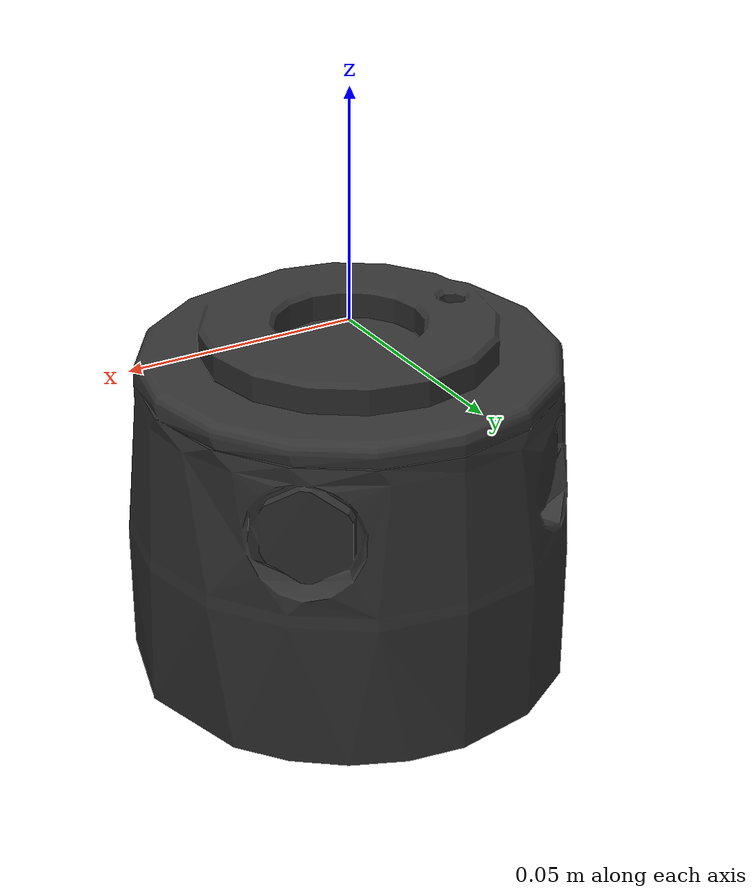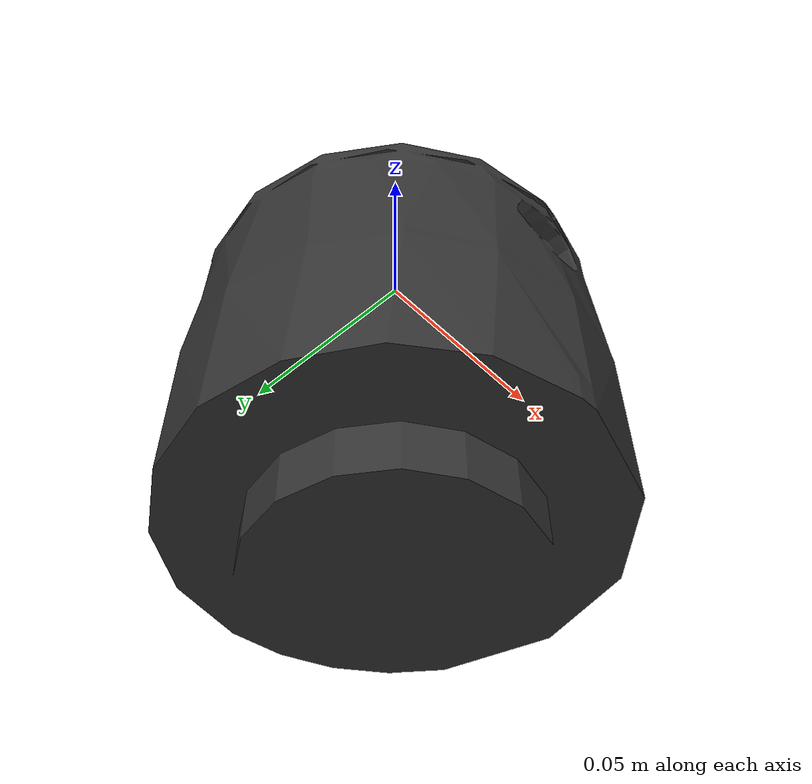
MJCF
<mujoco model="J6">
  <default>
    <default class="visual">
      <geom group="2" type="mesh" contype="0" conaffinity="0"/>
    </default>
    <default class="collision">
      <geom group="3" type="mesh"/>
    </default>
  </default>
  <asset>
    <material name="material_m6_0" specular="0.20000000000000004" shininess="1.0" rgba="0.20000000 0.20000000 0.20000000 1.0"/>
    <mesh file="J6.obj"/>
  </asset>
  <worldbody>
    <body name="J6">
      <geom material="material_m6_0" mesh="J6" class="visual"/>
      <geom mesh="J6" class="collision"/>
    </body>
  </worldbody>
</mujoco>
